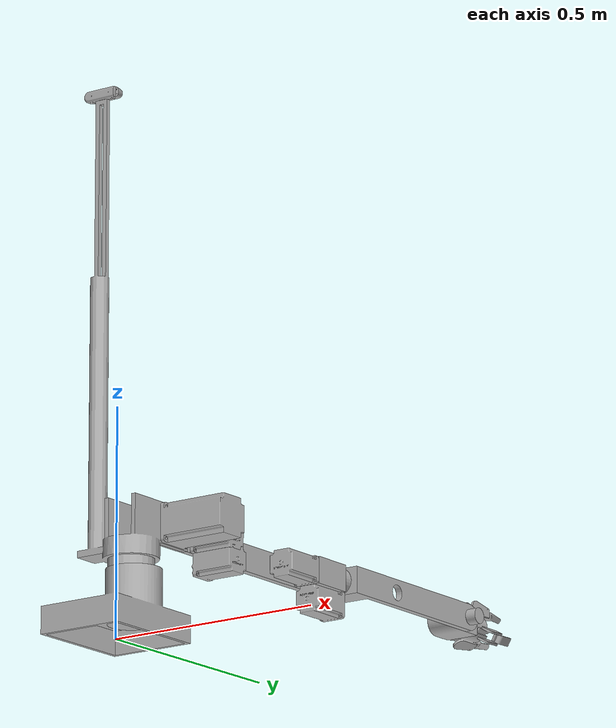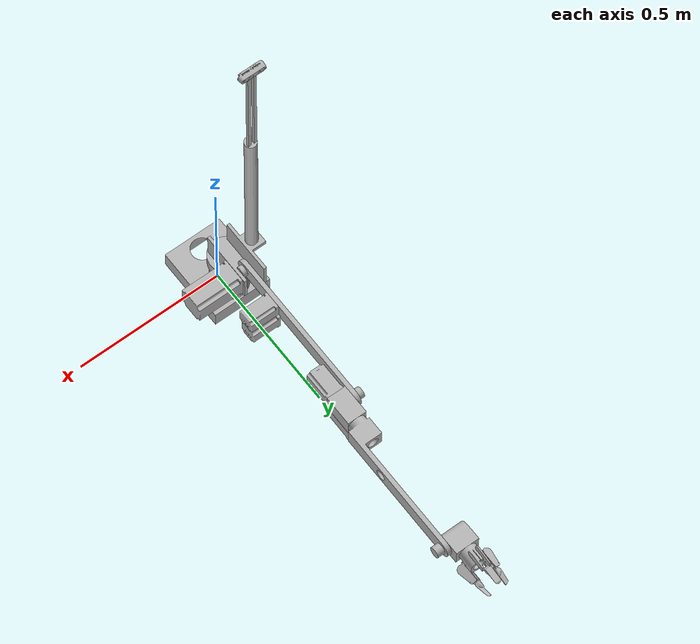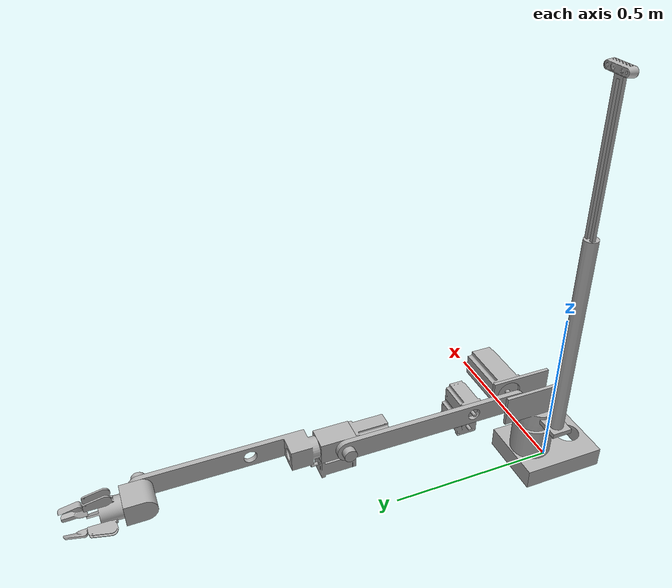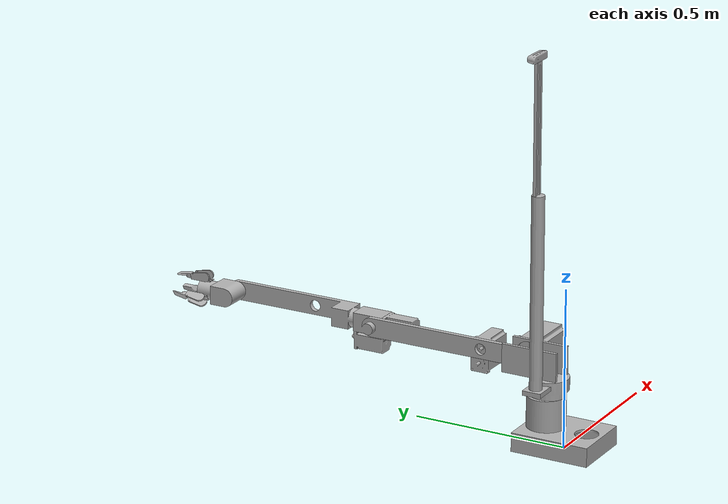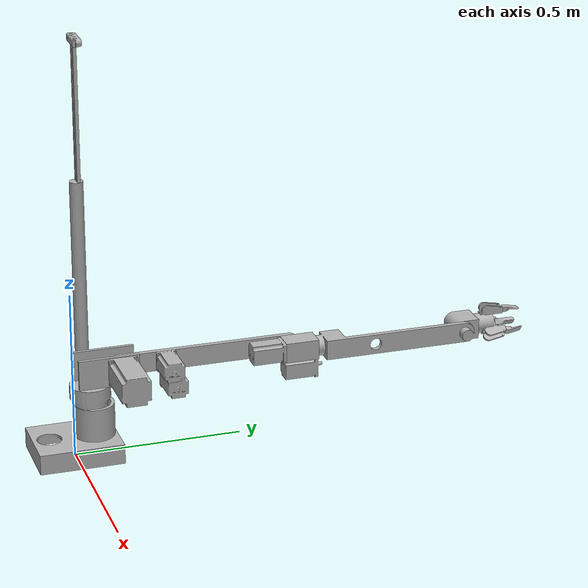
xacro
<?xml version="1.0" ?>
<robot name="arm_export" xmlns:xacro="http://www.ros.org/wiki/xacro">

<xacro:include filename="$(find arm_export_description)/urdf/materials.xacro" />
<xacro:include filename="$(find arm_export_description)/urdf/arm_export.trans" />
<xacro:include filename="$(find arm_export_description)/urdf/arm_export.gazebo" />
<link name="base_link">
  <inertial>
    <origin rpy="0 0 0" xyz="-9.029061793754004e-14 0.016476818393225144 0.07021749351752887"/>
    <mass value="2.9829690964186772"/>
    <inertia ixx="0.024074" ixy="-0.0" ixz="-0.0" iyy="0.017973" iyz="-0.002884" izz="0.02919"/>
  </inertial>
  <visual>
    <origin rpy="0 0 0" xyz="0 0 0"/>
    <geometry>
      <mesh filename="package://arm_export_description/meshes/base_link.stl" scale="0.001 0.001 0.001"/>
    </geometry>
    <material name="silver"/>
  </visual>
  <collision>
    <origin rpy="0 0 0" xyz="0 0 0"/>
    <geometry>
      <mesh filename="package://arm_export_description/meshes/base_link.stl" scale="0.001 0.001 0.001"/>
    </geometry>
  </collision>
</link>

<link name="base_turnable_v14_1">
  <inertial>
    <origin rpy="0 0 0" xyz="-0.02993448375707213 0.004673714897230209 0.1005386168410774"/>
    <mass value="7.350921302447738"/>
    <inertia ixx="0.39669" ixy="-0.000566" ixz="0.055433" iyy="0.40707" iyz="-0.000291" izz="0.023619"/>
  </inertial>
  <visual>
    <origin rpy="0 0 0" xyz="0.0 -0.05 -0.18"/>
    <geometry>
      <mesh filename="package://arm_export_description/meshes/base_turnable_v14_1.stl" scale="0.001 0.001 0.001"/>
    </geometry>
    <material name="silver"/>
  </visual>
  <collision>
    <origin rpy="0 0 0" xyz="0.0 -0.05 -0.18"/>
    <geometry>
      <mesh filename="package://arm_export_description/meshes/base_turnable_v14_1.stl" scale="0.001 0.001 0.001"/>
    </geometry>
  </collision>
</link>

<link name="NEMA_34_v2_1">
  <inertial>
    <origin rpy="0 0 0" xyz="0.07651505285685478 -5.551115123125783e-17 3.221002922604299e-06"/>
    <mass value="5.316520087759884"/>
    <inertia ixx="0.005731" ixy="0.0" ixz="2e-06" iyy="0.014133" iyz="0.0" izz="0.014133"/>
  </inertial>
  <visual>
    <origin rpy="0 0 0" xyz="-0.04 -0.14 -0.265"/>
    <geometry>
      <mesh filename="package://arm_export_description/meshes/NEMA_34_v2_1.stl" scale="0.001 0.001 0.001"/>
    </geometry>
    <material name="silver"/>
  </visual>
  <collision>
    <origin rpy="0 0 0" xyz="-0.04 -0.14 -0.265"/>
    <geometry>
      <mesh filename="package://arm_export_description/meshes/NEMA_34_v2_1.stl" scale="0.001 0.001 0.001"/>
    </geometry>
  </collision>
</link>

<link name="stepper_joint_v6_1">
  <inertial>
    <origin rpy="0 0 0" xyz="0.0075000000000001316 0.0 -1.305622276959184e-13"/>
    <mass value="0.03498948817935604"/>
    <inertia ixx="7e-06" ixy="0.0" ixz="-0.0" iyy="4e-06" iyz="0.0" izz="4e-06"/>
  </inertial>
  <visual>
    <origin rpy="0 0 0" xyz="-0.00348 -0.14 -0.265"/>
    <geometry>
      <mesh filename="package://arm_export_description/meshes/stepper_joint_v6_1.stl" scale="0.001 0.001 0.001"/>
    </geometry>
    <material name="silver"/>
  </visual>
  <collision>
    <origin rpy="0 0 0" xyz="-0.00348 -0.14 -0.265"/>
    <geometry>
      <mesh filename="package://arm_export_description/meshes/stepper_joint_v6_1.stl" scale="0.001 0.001 0.001"/>
    </geometry>
  </collision>
</link>

<link name="link_1_v13_1">
  <inertial>
    <origin rpy="0 0 0" xyz="-0.007499999999999868 0.2614820661654451 0.0"/>
    <mass value="1.2422891158221263"/>
    <inertia ixx="0.03033" ixy="0.0" ixz="-0.0" iyy="0.000414" iyz="0.0" izz="0.029962"/>
  </inertial>
  <visual>
    <origin rpy="0 0 0" xyz="-0.00348 -0.14 -0.265"/>
    <geometry>
      <mesh filename="package://arm_export_description/meshes/link_1_v13_1.stl" scale="0.001 0.001 0.001"/>
    </geometry>
    <material name="silver"/>
  </visual>
  <collision>
    <origin rpy="0 0 0" xyz="-0.00348 -0.14 -0.265"/>
    <geometry>
      <mesh filename="package://arm_export_description/meshes/link_1_v13_1.stl" scale="0.001 0.001 0.001"/>
    </geometry>
  </collision>
</link>

<link name="link_2_v8_1">
  <inertial>
    <origin rpy="0 0 0" xyz="0.02499852381758487 0.1769222136151415 0.0"/>
    <mass value="1.5478777520934175"/>
    <inertia ixx="0.032303" ixy="-0.002603" ixz="-0.0" iyy="0.001209" iyz="-0.0" izz="0.032482"/>
  </inertial>
  <visual>
    <origin rpy="0 0 0" xyz="-0.03848 -0.725 -0.265"/>
    <geometry>
      <mesh filename="package://arm_export_description/meshes/link_2_v8_1.stl" scale="0.001 0.001 0.001"/>
    </geometry>
    <material name="silver"/>
  </visual>
  <collision>
    <origin rpy="0 0 0" xyz="-0.03848 -0.725 -0.265"/>
    <geometry>
      <mesh filename="package://arm_export_description/meshes/link_2_v8_1.stl" scale="0.001 0.001 0.001"/>
    </geometry>
  </collision>
</link>

<link name="joint_end_v3_1">
  <inertial>
    <origin rpy="0 0 0" xyz="-0.03379678599677132 0.01157911806280465 1.1102230246251565e-16"/>
    <mass value="1.063293416063342"/>
    <inertia ixx="0.000747" ixy="7.6e-05" ixz="0.0" iyy="0.00115" iyz="0.0" izz="0.001353"/>
  </inertial>
  <visual>
    <origin rpy="0 0 0" xyz="-0.06848 -1.18 -0.265"/>
    <geometry>
      <mesh filename="package://arm_export_description/meshes/joint_end_v3_1.stl" scale="0.001 0.001 0.001"/>
    </geometry>
    <material name="silver"/>
  </visual>
  <collision>
    <origin rpy="0 0 0" xyz="-0.06848 -1.18 -0.265"/>
    <geometry>
      <mesh filename="package://arm_export_description/meshes/joint_end_v3_1.stl" scale="0.001 0.001 0.001"/>
    </geometry>
  </collision>
</link>

<link name="NEMA_24_v1__1__1">
  <inertial>
    <origin rpy="0 0 0" xyz="0.04795079485405239 7.655954092911088e-08 2.5568133203979215e-06"/>
    <mass value="2.4982959259379585"/>
    <inertia ixx="0.001293" ixy="-0.0" ixz="-0.0" iyy="0.002718" iyz="0.0" izz="0.002718"/>
  </inertial>
  <visual>
    <origin rpy="0 0 0" xyz="-0.00348 -0.2775 -0.265"/>
    <geometry>
      <mesh filename="package://arm_export_description/meshes/NEMA_24_v1__1__1.stl" scale="0.001 0.001 0.001"/>
    </geometry>
    <material name="silver"/>
  </visual>
  <collision>
    <origin rpy="0 0 0" xyz="-0.00348 -0.2775 -0.265"/>
    <geometry>
      <mesh filename="package://arm_export_description/meshes/NEMA_24_v1__1__1.stl" scale="0.001 0.001 0.001"/>
    </geometry>
  </collision>
</link>

<link name="NEMA_24_v1__3__1">
  <inertial>
    <origin rpy="0 0 0" xyz="7.65595409013553e-08 -0.04795079485405218 2.5568133203979215e-06"/>
    <mass value="2.4982959259379585"/>
    <inertia ixx="0.002718" ixy="0.0" ixz="0.0" iyy="0.001293" iyz="0.0" izz="0.002718"/>
  </inertial>
  <visual>
    <origin rpy="0 0 0" xyz="-0.03848 -0.625 -0.265"/>
    <geometry>
      <mesh filename="package://arm_export_description/meshes/NEMA_24_v1__3__1.stl" scale="0.001 0.001 0.001"/>
    </geometry>
    <material name="silver"/>
  </visual>
  <collision>
    <origin rpy="0 0 0" xyz="-0.03848 -0.625 -0.265"/>
    <geometry>
      <mesh filename="package://arm_export_description/meshes/NEMA_24_v1__3__1.stl" scale="0.001 0.001 0.001"/>
    </geometry>
  </collision>
</link>

<link name="joint_v6_1">
  <inertial>
    <origin rpy="0 0 0" xyz="0.026213672668365277 0.017799785433927795 0.0"/>
    <mass value="0.8743627585315773"/>
    <inertia ixx="0.000992" ixy="-8.4e-05" ixz="0.0" iyy="0.000864" iyz="-0.0" izz="0.001253"/>
  </inertial>
  <visual>
    <origin rpy="0 0 0" xyz="-0.00348 -0.655 -0.265"/>
    <geometry>
      <mesh filename="package://arm_export_description/meshes/joint_v6_1.stl" scale="0.001 0.001 0.001"/>
    </geometry>
    <material name="silver"/>
  </visual>
  <collision>
    <origin rpy="0 0 0" xyz="-0.00348 -0.655 -0.265"/>
    <geometry>
      <mesh filename="package://arm_export_description/meshes/joint_v6_1.stl" scale="0.001 0.001 0.001"/>
    </geometry>
  </collision>
</link>

<link name="NEMA_24_v1__2__1">
  <inertial>
    <origin rpy="0 0 0" xyz="7.655954077029509e-08 2.5568133205228216e-06 0.047950794854052264"/>
    <mass value="2.4982959259379585"/>
    <inertia ixx="0.002718" ixy="0.0" ixz="-0.0" iyy="0.002718" iyz="-0.0" izz="0.001293"/>
  </inertial>
  <visual>
    <origin rpy="0 0 0" xyz="0.0 0.075 -0.06"/>
    <geometry>
      <mesh filename="package://arm_export_description/meshes/NEMA_24_v1__2__1.stl" scale="0.001 0.001 0.001"/>
    </geometry>
    <material name="silver"/>
  </visual>
  <collision>
    <origin rpy="0 0 0" xyz="0.0 0.075 -0.06"/>
    <geometry>
      <mesh filename="package://arm_export_description/meshes/NEMA_24_v1__2__1.stl" scale="0.001 0.001 0.001"/>
    </geometry>
  </collision>
</link>

<link name="Intel_RealSense_D435_v3_1">
  <inertial>
    <origin rpy="0 0 0" xyz="-0.0010696020063957895 0.0010440004277678036 0.012511380076091427"/>
    <mass value="0.2739287989936542"/>
    <inertia ixx="2.6e-05" ixy="-2e-06" ixz="0.0" iyy="0.000177" iyz="0.0" izz="0.000178"/>
  </inertial>
  <visual>
    <origin rpy="0 0 0" xyz="0.09 -0.055 -1.209827"/>
    <geometry>
      <mesh filename="package://arm_export_description/meshes/Intel_RealSense_D435_v3_1.stl" scale="0.001 0.001 0.001"/>
    </geometry>
    <material name="silver"/>
  </visual>
  <collision>
    <origin rpy="0 0 0" xyz="0.09 -0.055 -1.209827"/>
    <geometry>
      <mesh filename="package://arm_export_description/meshes/Intel_RealSense_D435_v3_1.stl" scale="0.001 0.001 0.001"/>
    </geometry>
  </collision>
</link>

<link name="NEMA_24_v1_1">
  <inertial>
    <origin rpy="0 0 0" xyz="-7.655954063073844e-08 0.0009492051459477624 -0.02980255681332042"/>
    <mass value="2.4982959259379585"/>
    <inertia ixx="0.002718" ixy="-0.0" ixz="0.0" iyy="0.001293" iyz="-0.0" izz="0.002718"/>
  </inertial>
  <visual>
    <origin rpy="0 0 0" xyz="-0.03598 -0.675 -0.235"/>
    <geometry>
      <mesh filename="package://arm_export_description/meshes/NEMA_24_v1_1.stl" scale="0.001 0.001 0.001"/>
    </geometry>
    <material name="silver"/>
  </visual>
  <collision>
    <origin rpy="0 0 0" xyz="-0.03598 -0.675 -0.235"/>
    <geometry>
      <mesh filename="package://arm_export_description/meshes/NEMA_24_v1_1.stl" scale="0.001 0.001 0.001"/>
    </geometry>
  </collision>
</link>

<link name="gripper_export_v2_1">
  <inertial>
    <origin rpy="0 0 0" xyz="-8.738046813894229e-10 0.03673655788581853 1.1906842178888155e-10"/>
    <mass value="1.1315792783817065"/>
    <inertia ixx="0.001126" ixy="0.0" ixz="-0.0" iyy="0.001318" iyz="-0.0" izz="0.001126"/>
  </inertial>
  <visual>
    <origin rpy="0 0 0" xyz="-0.02848 -1.23 -0.265"/>
    <geometry>
      <mesh filename="package://arm_export_description/meshes/gripper_export_v2_1.stl" scale="0.001 0.001 0.001"/>
    </geometry>
    <material name="silver"/>
  </visual>
  <collision>
    <origin rpy="0 0 0" xyz="-0.02848 -1.23 -0.265"/>
    <geometry>
      <mesh filename="package://arm_export_description/meshes/gripper_export_v2_1.stl" scale="0.001 0.001 0.001"/>
    </geometry>
  </collision>
</link>

<link name="EndEffector_v1_1">
  <inertial>
    <origin rpy="0 0 0" xyz="-3.283081966010126e-10 0.02297996859066398 0.004865333770813995"/>
    <mass value="0.07511526055866109"/>
    <inertia ixx="1.7e-05" ixy="0.0" ixz="-0.0" iyy="3e-06" iyz="-0.0" izz="1.8e-05"/>
  </inertial>
  <visual>
    <origin rpy="0 0 0" xyz="-0.02848 -1.3145 -0.2975"/>
    <geometry>
      <mesh filename="package://arm_export_description/meshes/EndEffector_v1_1.stl" scale="0.001 0.001 0.001"/>
    </geometry>
    <material name="silver"/>
  </visual>
  <collision>
    <origin rpy="0 0 0" xyz="-0.02848 -1.3145 -0.2975"/>
    <geometry>
      <mesh filename="package://arm_export_description/meshes/EndEffector_v1_1.stl" scale="0.001 0.001 0.001"/>
    </geometry>
  </collision>
</link>

<link name="EndEffector_v1__1__1">
  <inertial>
    <origin rpy="0 0 0" xyz="-0.004213328102255237 0.02297996859066398 -0.002432667169730396"/>
    <mass value="0.07511526055866109"/>
    <inertia ixx="1.8e-05" ixy="0.0" ixz="0.0" iyy="3e-06" iyz="0.0" izz="1.8e-05"/>
  </inertial>
  <visual>
    <origin rpy="0 0 0" xyz="-0.000334 -1.3145 -0.24875"/>
    <geometry>
      <mesh filename="package://arm_export_description/meshes/EndEffector_v1__1__1.stl" scale="0.001 0.001 0.001"/>
    </geometry>
    <material name="silver"/>
  </visual>
  <collision>
    <origin rpy="0 0 0" xyz="-0.000334 -1.3145 -0.24875"/>
    <geometry>
      <mesh filename="package://arm_export_description/meshes/EndEffector_v1__1__1.stl" scale="0.001 0.001 0.001"/>
    </geometry>
  </collision>
</link>

<link name="EndEffector_v1__2__1">
  <inertial>
    <origin rpy="0 0 0" xyz="0.004213328299858432 0.02297996859066398 -0.0024326668274720353"/>
    <mass value="0.07511526055866109"/>
    <inertia ixx="1.8e-05" ixy="-0.0" ixz="-0.0" iyy="3e-06" iyz="0.0" izz="1.8e-05"/>
  </inertial>
  <visual>
    <origin rpy="0 0 0" xyz="-0.056626 -1.3145 -0.24875"/>
    <geometry>
      <mesh filename="package://arm_export_description/meshes/EndEffector_v1__2__1.stl" scale="0.001 0.001 0.001"/>
    </geometry>
    <material name="silver"/>
  </visual>
  <collision>
    <origin rpy="0 0 0" xyz="-0.056626 -1.3145 -0.24875"/>
    <geometry>
      <mesh filename="package://arm_export_description/meshes/EndEffector_v1__2__1.stl" scale="0.001 0.001 0.001"/>
    </geometry>
  </collision>
</link>

<joint name="motor_1" type="continuous">
  <origin rpy="0 0 0" xyz="0.0 0.05 0.18"/>
  <parent link="base_link"/>
  <child link="base_turnable_v14_1"/>
  <axis xyz="0.0 0.0 -1.0"/>
</joint>

<joint name="Rigid17" type="fixed">
  <origin rpy="0 0 0" xyz="0.04 0.09 0.085"/>
  <parent link="base_turnable_v14_1"/>
  <child link="NEMA_34_v2_1"/>
</joint>

<joint name="Rigid18" type="fixed">
  <origin rpy="0 0 0" xyz="-0.03652 0.0 0.0"/>
  <parent link="NEMA_34_v2_1"/>
  <child link="stepper_joint_v6_1"/>
</joint>

<joint name="motor_2" type="continuous">
  <origin rpy="0 0 0" xyz="0.0 0.0 0.0"/>
  <parent link="stepper_joint_v6_1"/>
  <child link="link_1_v13_1"/>
  <axis xyz="-1.0 0.0 0.0"/>
</joint>

<joint name="motor_4" type="continuous">
  <origin rpy="0 0 0" xyz="0.035 0.07 0.0"/>
  <parent link="joint_v6_1"/>
  <child link="link_2_v8_1"/>
  <axis xyz="0.0 -1.0 -0.0"/>
</joint>

<joint name="motor_5" type="continuous">
  <origin rpy="0 0 0" xyz="0.03 0.455 0.0"/>
  <parent link="link_2_v8_1"/>
  <child link="joint_end_v3_1"/>
  <axis xyz="1.0 0.0 0.0"/>
</joint>

<joint name="Rigid34" type="fixed">
  <origin rpy="0 0 0" xyz="0.0 0.1375 0.0"/>
  <parent link="link_1_v13_1"/>
  <child link="NEMA_24_v1__1__1"/>
</joint>

<joint name="Rigid35" type="fixed">
  <origin rpy="0 0 0" xyz="0.035 -0.03 0.0"/>
  <parent link="joint_v6_1"/>
  <child link="NEMA_24_v1__3__1"/>
</joint>

<joint name="motor_3" type="continuous">
  <origin rpy="0 0 0" xyz="0.0 0.515 0.0"/>
  <parent link="link_1_v13_1"/>
  <child link="joint_v6_1"/>
  <axis xyz="-1.0 0.0 0.0"/>
</joint>

<joint name="Rigid38" type="fixed">
  <origin rpy="0 0 0" xyz="0.0 -0.075 0.06"/>
  <parent link="base_link"/>
  <child link="NEMA_24_v1__2__1"/>
</joint>

<joint name="Rev41" type="continuous">
  <origin rpy="0 0 0" xyz="-0.09 0.005 1.029827"/>
  <parent link="base_turnable_v14_1"/>
  <child link="Intel_RealSense_D435_v3_1"/>
  <axis xyz="0.0 0.0 -1.0"/>
</joint>

<joint name="Rigid42" type="fixed">
  <origin rpy="0 0 0" xyz="0.0325 0.02 -0.03"/>
  <parent link="joint_v6_1"/>
  <child link="NEMA_24_v1_1"/>
</joint>

<joint name="Rigid47" type="fixed">
  <origin rpy="0 0 0" xyz="-0.04 0.05 0.0"/>
  <parent link="joint_end_v3_1"/>
  <child link="gripper_export_v2_1"/>
</joint>

<joint name="Rev48" type="continuous">
  <origin rpy="0 0 0" xyz="0.0 0.0845 0.0325"/>
  <parent link="gripper_export_v2_1"/>
  <child link="EndEffector_v1_1"/>
  <axis xyz="1.0 0.0 0.0"/>
</joint>

<joint name="Rev49" type="continuous">
  <origin rpy="0 0 0" xyz="-0.028146 0.0845 -0.01625"/>
  <parent link="gripper_export_v2_1"/>
  <child link="EndEffector_v1__1__1"/>
  <axis xyz="-0.5 -0.0 0.866025"/>
</joint>

<joint name="Rev50" type="continuous">
  <origin rpy="0 0 0" xyz="0.028146 0.0845 -0.01625"/>
  <parent link="gripper_export_v2_1"/>
  <child link="EndEffector_v1__2__1"/>
  <axis xyz="-0.5 0.0 -0.866025"/>
</joint>

</robot>

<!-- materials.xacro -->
<robot name="arm_export" xmlns:xacro="http://www.ros.org/wiki/xacro" >

<material name="silver">
  <color rgba="0.700 0.700 0.700 1.000"/>
</material>

</robot>

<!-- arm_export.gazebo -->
<robot name="arm_export" xmlns:xacro="http://www.ros.org/wiki/xacro" >

<xacro:property name="body_color" value="Gazebo/Silver" />

<gazebo>
  <plugin filename="libgazebo_ros_control.so" name="control"/>
</gazebo>
<gazebo reference="base_link">
  <material>${body_color}</material>
  <mu1>0.2</mu1>
  <mu2>0.2</mu2>
  <selfCollide>true</selfCollide>
  <gravity>true</gravity>
</gazebo>

<gazebo reference="base_turnable_v14_1">
  <material>${body_color}</material>
  <mu1>0.2</mu1>
  <mu2>0.2</mu2>
  <selfCollide>true</selfCollide>
</gazebo>

<gazebo reference="NEMA_34_v2_1">
  <material>${body_color}</material>
  <mu1>0.2</mu1>
  <mu2>0.2</mu2>
  <selfCollide>true</selfCollide>
</gazebo>

<gazebo reference="stepper_joint_v6_1">
  <material>${body_color}</material>
  <mu1>0.2</mu1>
  <mu2>0.2</mu2>
  <selfCollide>true</selfCollide>
</gazebo>

<gazebo reference="link_1_v13_1">
  <material>${body_color}</material>
  <mu1>0.2</mu1>
  <mu2>0.2</mu2>
  <selfCollide>true</selfCollide>
</gazebo>

<gazebo reference="link_2_v8_1">
  <material>${body_color}</material>
  <mu1>0.2</mu1>
  <mu2>0.2</mu2>
  <selfCollide>true</selfCollide>
</gazebo>

<gazebo reference="joint_end_v3_1">
  <material>${body_color}</material>
  <mu1>0.2</mu1>
  <mu2>0.2</mu2>
  <selfCollide>true</selfCollide>
</gazebo>

<gazebo reference="NEMA_24_v1__1__1">
  <material>${body_color}</material>
  <mu1>0.2</mu1>
  <mu2>0.2</mu2>
  <selfCollide>true</selfCollide>
</gazebo>

<gazebo reference="NEMA_24_v1__3__1">
  <material>${body_color}</material>
  <mu1>0.2</mu1>
  <mu2>0.2</mu2>
  <selfCollide>true</selfCollide>
</gazebo>

<gazebo reference="joint_v6_1">
  <material>${body_color}</material>
  <mu1>0.2</mu1>
  <mu2>0.2</mu2>
  <selfCollide>true</selfCollide>
</gazebo>

<gazebo reference="NEMA_24_v1__2__1">
  <material>${body_color}</material>
  <mu1>0.2</mu1>
  <mu2>0.2</mu2>
  <selfCollide>true</selfCollide>
</gazebo>

<gazebo reference="Intel_RealSense_D435_v3_1">
  <material>${body_color}</material>
  <mu1>0.2</mu1>
  <mu2>0.2</mu2>
  <selfCollide>true</selfCollide>
</gazebo>

<gazebo reference="NEMA_24_v1_1">
  <material>${body_color}</material>
  <mu1>0.2</mu1>
  <mu2>0.2</mu2>
  <selfCollide>true</selfCollide>
</gazebo>

<gazebo reference="gripper_export_v2_1">
  <material>${body_color}</material>
  <mu1>0.2</mu1>
  <mu2>0.2</mu2>
  <selfCollide>true</selfCollide>
</gazebo>

<gazebo reference="EndEffector_v1_1">
  <material>${body_color}</material>
  <mu1>0.2</mu1>
  <mu2>0.2</mu2>
  <selfCollide>true</selfCollide>
</gazebo>

<gazebo reference="EndEffector_v1__1__1">
  <material>${body_color}</material>
  <mu1>0.2</mu1>
  <mu2>0.2</mu2>
  <selfCollide>true</selfCollide>
</gazebo>

<gazebo reference="EndEffector_v1__2__1">
  <material>${body_color}</material>
  <mu1>0.2</mu1>
  <mu2>0.2</mu2>
  <selfCollide>true</selfCollide>
</gazebo>

</robot>
